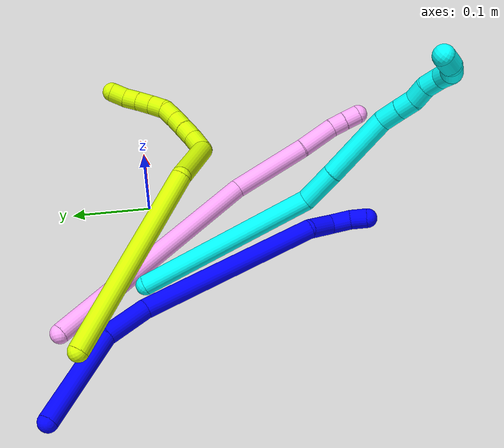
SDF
<sdf version="1.7">
 <world name="default">
  <model name="1">
   <static>0</static>
   <link name="1">
    <collision name="collision-cylinder-e_1_1_4">
     <pose>0.043649 -0.03724 -0.02259 2.11607 0.786469 1.27007</pose>
     <geometry><cylinder><radius>0.0125</radius><length>0.123327</length></cylinder></geometry>
     <surface>
      <friction><ode><mu>1.16</mu><mu2>1.16</mu2><slip1>0</slip1><slip2>0</slip2></ode></friction>
      <contact><ode><kp>1e+06</kp><kd>1</kd><max_vel>0</max_vel><min_depth>0.001</min_depth></ode></contact>
     </surface>
    </collision>
    <visual name="visual-cylinder-e_1_1_4">
     <pose>0.043649 -0.03724 -0.02259 2.11607 0.786469 1.27007</pose>
     <geometry><cylinder><radius>0.0125</radius><length>0.123327</length></cylinder></geometry>
     <material><ambient>0 0 1 1</ambient></material>
    </visual>
    <collision name="collision-cylinder-e_2_4_5">
     <pose>0.102055 -0.099795 -0.052172 1.84024 0.511912 0.662215</pose>
     <geometry><cylinder><radius>0.0125</radius><length>0.060252</length></cylinder></geometry>
     <surface>
      <friction><ode><mu>1.16</mu><mu2>1.16</mu2><slip1>0</slip1><slip2>0</slip2></ode></friction>
      <contact><ode><kp>1e+06</kp><kd>1</kd><max_vel>0</max_vel><min_depth>0.001</min_depth></ode></contact>
     </surface>
    </collision>
    <visual name="visual-cylinder-e_2_4_5">
     <pose>0.102055 -0.099795 -0.052172 1.84024 0.511912 0.662215</pose>
     <geometry><cylinder><radius>0.0125</radius><length>0.060252</length></cylinder></geometry>
     <material><ambient>0 0 1 1</ambient></material>
    </visual>
    <collision name="collision-cylinder-e_3_5_6">
     <pose>0.167911 -0.229491 -0.053424 1.51586 0.454658 0.43111</pose>
     <geometry><cylinder><radius>0.0125</radius><length>0.232714</length></cylinder></geometry>
     <surface>
      <friction><ode><mu>1.16</mu><mu2>1.16</mu2><slip1>0</slip1><slip2>0</slip2></ode></friction>
      <contact><ode><kp>1e+06</kp><kd>1</kd><max_vel>0</max_vel><min_depth>0.001</min_depth></ode></contact>
     </surface>
    </collision>
    <visual name="visual-cylinder-e_3_5_6">
     <pose>0.167911 -0.229491 -0.053424 1.51586 0.454658 0.43111</pose>
     <geometry><cylinder><radius>0.0125</radius><length>0.232714</length></cylinder></geometry>
     <material><ambient>0 0 1 1</ambient></material>
    </visual>
    <collision name="collision-cylinder-e_4_6_7">
     <pose>0.222172 -0.350883 -0.051691 1.80211 0.178945 0.225632</pose>
     <geometry><cylinder><radius>0.0125</radius><length>0.035525</length></cylinder></geometry>
     <surface>
      <friction><ode><mu>1.16</mu><mu2>1.16</mu2><slip1>0</slip1><slip2>0</slip2></ode></friction>
      <contact><ode><kp>1e+06</kp><kd>1</kd><max_vel>0</max_vel><min_depth>0.001</min_depth></ode></contact>
     </surface>
    </collision>
    <visual name="visual-cylinder-e_4_6_7">
     <pose>0.222172 -0.350883 -0.051691 1.80211 0.178945 0.225632</pose>
     <geometry><cylinder><radius>0.0125</radius><length>0.035525</length></cylinder></geometry>
     <material><ambient>0 0 1 1</ambient></material>
    </visual>
    <collision name="collision-cylinder-e_5_7_8">
     <pose>0.229015 -0.379238 -0.049874 1.0964 0.28113 0.172378</pose>
     <geometry><cylinder><radius>0.0125</radius><length>0.026541</length></cylinder></geometry>
     <surface>
      <friction><ode><mu>1.16</mu><mu2>1.16</mu2><slip1>0</slip1><slip2>0</slip2></ode></friction>
      <contact><ode><kp>1e+06</kp><kd>1</kd><max_vel>0</max_vel><min_depth>0.001</min_depth></ode></contact>
     </surface>
    </collision>
    <visual name="visual-cylinder-e_5_7_8">
     <pose>0.229015 -0.379238 -0.049874 1.0964 0.28113 0.172378</pose>
     <geometry><cylinder><radius>0.0125</radius><length>0.026541</length></cylinder></geometry>
     <material><ambient>0 0 1 1</ambient></material>
    </visual>
    <collision name="collision-cylinder-e_6_8_2">
     <pose>0.234254 -0.399417 -0.038004 0.97073 0.144396 0.076257</pose>
     <geometry><cylinder><radius>0.0125</radius><length>0.021642</length></cylinder></geometry>
     <surface>
      <friction><ode><mu>1.16</mu><mu2>1.16</mu2><slip1>0</slip1><slip2>0</slip2></ode></friction>
      <contact><ode><kp>1e+06</kp><kd>1</kd><max_vel>0</max_vel><min_depth>0.001</min_depth></ode></contact>
     </surface>
    </collision>
    <visual name="visual-cylinder-e_6_8_2">
     <pose>0.234254 -0.399417 -0.038004 0.97073 0.144396 0.076257</pose>
     <geometry><cylinder><radius>0.0125</radius><length>0.021642</length></cylinder></geometry>
     <material><ambient>0 0 1 1</ambient></material>
    </visual>
    <collision name="collision-sphere-2">
     <pose>0.235811 -0.408254 -0.031957 0 -0 0</pose>
     <geometry><sphere><radius>0.0125</radius></sphere></geometry>
     <surface>
      <friction><ode><mu>1.16</mu><mu2>1.16</mu2><slip1>0</slip1><slip2>0</slip2></ode></friction>
      <contact><ode><kp>1e+06</kp><kd>1</kd><max_vel>0</max_vel><min_depth>0.001</min_depth></ode></contact>
     </surface>
    </collision>
    <visual name="visual-sphere-2">
     <pose>0.235811 -0.408254 -0.031957 0 -0 0</pose>
     <geometry><sphere><radius>0.0125</radius></sphere></geometry>
     <material><ambient>0 0 1 1</ambient></material>
    </visual>
    <collision name="collision-sphere-4">
     <pose>0.087298 -0.074479 -0.045181 0 -0 0</pose>
     <geometry><sphere><radius>0.0125</radius></sphere></geometry>
     <surface>
      <friction><ode><mu>1.16</mu><mu2>1.16</mu2><slip1>0</slip1><slip2>0</slip2></ode></friction>
      <contact><ode><kp>1e+06</kp><kd>1</kd><max_vel>0</max_vel><min_depth>0.001</min_depth></ode></contact>
     </surface>
    </collision>
    <visual name="visual-sphere-4">
     <pose>0.087298 -0.074479 -0.045181 0 -0 0</pose>
     <geometry><sphere><radius>0.0125</radius></sphere></geometry>
     <material><ambient>0 0 1 1</ambient></material>
    </visual>
    <collision name="collision-sphere-1">
     <geometry><sphere><radius>0.0125</radius></sphere></geometry>
     <surface>
      <friction><ode><mu>1.16</mu><mu2>1.16</mu2><slip1>0</slip1><slip2>0</slip2></ode></friction>
      <contact><ode><kp>1e+06</kp><kd>1</kd><max_vel>0</max_vel><min_depth>0.001</min_depth></ode></contact>
     </surface>
    </collision>
    <visual name="visual-sphere-1">
     <geometry><sphere><radius>0.0125</radius></sphere></geometry>
     <material><ambient>0 0 1 1</ambient></material>
    </visual>
    <collision name="collision-sphere-8">
     <pose>0.232697 -0.390579 -0.044051 0 -0 0</pose>
     <geometry><sphere><radius>0.0125</radius></sphere></geometry>
     <surface>
      <friction><ode><mu>1.16</mu><mu2>1.16</mu2><slip1>0</slip1><slip2>0</slip2></ode></friction>
      <contact><ode><kp>1e+06</kp><kd>1</kd><max_vel>0</max_vel><min_depth>0.001</min_depth></ode></contact>
     </surface>
    </collision>
    <visual name="visual-sphere-8">
     <pose>0.232697 -0.390579 -0.044051 0 -0 0</pose>
     <geometry><sphere><radius>0.0125</radius></sphere></geometry>
     <material><ambient>0 0 1 1</ambient></material>
    </visual>
    <collision name="collision-sphere-5">
     <pose>0.116812 -0.125112 -0.059164 0 -0 0</pose>
     <geometry><sphere><radius>0.0125</radius></sphere></geometry>
     <surface>
      <friction><ode><mu>1.16</mu><mu2>1.16</mu2><slip1>0</slip1><slip2>0</slip2></ode></friction>
      <contact><ode><kp>1e+06</kp><kd>1</kd><max_vel>0</max_vel><min_depth>0.001</min_depth></ode></contact>
     </surface>
    </collision>
    <visual name="visual-sphere-5">
     <pose>0.116812 -0.125112 -0.059164 0 -0 0</pose>
     <geometry><sphere><radius>0.0125</radius></sphere></geometry>
     <material><ambient>0 0 1 1</ambient></material>
    </visual>
    <collision name="collision-sphere-6">
     <pose>0.21901 -0.33387 -0.047684 0 -0 0</pose>
     <geometry><sphere><radius>0.0125</radius></sphere></geometry>
     <surface>
      <friction><ode><mu>1.16</mu><mu2>1.16</mu2><slip1>0</slip1><slip2>0</slip2></ode></friction>
      <contact><ode><kp>1e+06</kp><kd>1</kd><max_vel>0</max_vel><min_depth>0.001</min_depth></ode></contact>
     </surface>
    </collision>
    <visual name="visual-sphere-6">
     <pose>0.21901 -0.33387 -0.047684 0 -0 0</pose>
     <geometry><sphere><radius>0.0125</radius></sphere></geometry>
     <material><ambient>0 0 1 1</ambient></material>
    </visual>
    <collision name="collision-sphere-7">
     <pose>0.225333 -0.367896 -0.055698 0 -0 0</pose>
     <geometry><sphere><radius>0.0125</radius></sphere></geometry>
     <surface>
      <friction><ode><mu>1.16</mu><mu2>1.16</mu2><slip1>0</slip1><slip2>0</slip2></ode></friction>
      <contact><ode><kp>1e+06</kp><kd>1</kd><max_vel>0</max_vel><min_depth>0.001</min_depth></ode></contact>
     </surface>
    </collision>
    <visual name="visual-sphere-7">
     <pose>0.225333 -0.367896 -0.055698 0 -0 0</pose>
     <geometry><sphere><radius>0.0125</radius></sphere></geometry>
     <material><ambient>0 0 1 1</ambient></material>
    </visual>
    <inertial>
     <pose>0.139296 -0.190371 -0.044689 0 -0 0</pose>
     <mass>0.5</mass>
     <inertia>
      <ixx>0.001459</ixx>
      <ixy>0</ixy>
      <ixz>0</ixz>
      <iyy>0.000806</iyy>
      <iyz>0</iyz>
      <izz>0.00048</izz>
     </inertia>
    </inertial>
   </link>
   <pose>-0.307117 0.134175 0.012484 0.434431 -0.736942 -0.192555</pose>
  </model>
  <model name="3">
   <static>0</static>
   <link name="3">
    <collision name="collision-cylinder-e_1_1_4">
     <pose>0.014718 -0.060624 0.092018 0.582556 0.132777 0.039861</pose>
     <geometry><cylinder><radius>0.0125</radius><length>0.222343</length></cylinder></geometry>
     <surface>
      <friction><ode><mu>1.16</mu><mu2>1.16</mu2><slip1>0</slip1><slip2>0</slip2></ode></friction>
      <contact><ode><kp>1e+06</kp><kd>1</kd><max_vel>0</max_vel><min_depth>0.001</min_depth></ode></contact>
     </surface>
    </collision>
    <visual name="visual-cylinder-e_1_1_4">
     <pose>0.014718 -0.060624 0.092018 0.582556 0.132777 0.039861</pose>
     <geometry><cylinder><radius>0.0125</radius><length>0.222343</length></cylinder></geometry>
     <material><ambient>0.003922 1 0.996078 1</ambient></material>
    </visual>
    <collision name="collision-cylinder-e_2_4_5">
     <pose>0.032044 -0.125366 0.206474 0.181527 0.113849 0.010373</pose>
     <geometry><cylinder><radius>0.0125</radius><length>0.045924</length></cylinder></geometry>
     <surface>
      <friction><ode><mu>1.16</mu><mu2>1.16</mu2><slip1>0</slip1><slip2>0</slip2></ode></friction>
      <contact><ode><kp>1e+06</kp><kd>1</kd><max_vel>0</max_vel><min_depth>0.001</min_depth></ode></contact>
     </surface>
    </collision>
    <visual name="visual-cylinder-e_2_4_5">
     <pose>0.032044 -0.125366 0.206474 0.181527 0.113849 0.010373</pose>
     <geometry><cylinder><radius>0.0125</radius><length>0.045924</length></cylinder></geometry>
     <material><ambient>0.003922 1 0.996078 1</ambient></material>
    </visual>
    <collision name="collision-cylinder-e_3_5_6">
     <pose>0.041416 -0.137377 0.270074 0.189453 0.159989 0.015233</pose>
     <geometry><cylinder><radius>0.0125</radius><length>0.084908</length></cylinder></geometry>
     <surface>
      <friction><ode><mu>1.16</mu><mu2>1.16</mu2><slip1>0</slip1><slip2>0</slip2></ode></friction>
      <contact><ode><kp>1e+06</kp><kd>1</kd><max_vel>0</max_vel><min_depth>0.001</min_depth></ode></contact>
     </surface>
    </collision>
    <visual name="visual-cylinder-e_3_5_6">
     <pose>0.041416 -0.137377 0.270074 0.189453 0.159989 0.015233</pose>
     <geometry><cylinder><radius>0.0125</radius><length>0.084908</length></cylinder></geometry>
     <material><ambient>0.003922 1 0.996078 1</ambient></material>
    </visual>
    <collision name="collision-cylinder-e_4_6_7">
     <pose>0.046261 -0.148255 0.323265 0.243235 -0.1535 -0.018797</pose>
     <geometry><cylinder><radius>0.0125</radius><length>0.025082</length></cylinder></geometry>
     <surface>
      <friction><ode><mu>1.16</mu><mu2>1.16</mu2><slip1>0</slip1><slip2>0</slip2></ode></friction>
      <contact><ode><kp>1e+06</kp><kd>1</kd><max_vel>0</max_vel><min_depth>0.001</min_depth></ode></contact>
     </surface>
    </collision>
    <visual name="visual-cylinder-e_4_6_7">
     <pose>0.046261 -0.148255 0.323265 0.243235 -0.1535 -0.018797</pose>
     <geometry><cylinder><radius>0.0125</radius><length>0.025082</length></cylinder></geometry>
     <material><ambient>0.003922 1 0.996078 1</ambient></material>
    </visual>
    <collision name="collision-cylinder-e_5_7_8">
     <pose>0.042843 -0.153864 0.344989 0.264262 -0.148367 -0.019754</pose>
     <geometry><cylinder><radius>0.0125</radius><length>0.02031</length></cylinder></geometry>
     <surface>
      <friction><ode><mu>1.16</mu><mu2>1.16</mu2><slip1>0</slip1><slip2>0</slip2></ode></friction>
      <contact><ode><kp>1e+06</kp><kd>1</kd><max_vel>0</max_vel><min_depth>0.001</min_depth></ode></contact>
     </surface>
    </collision>
    <visual name="visual-cylinder-e_5_7_8">
     <pose>0.042843 -0.153864 0.344989 0.264262 -0.148367 -0.019754</pose>
     <geometry><cylinder><radius>0.0125</radius><length>0.02031</length></cylinder></geometry>
     <material><ambient>0.003922 1 0.996078 1</ambient></material>
    </visual>
    <collision name="collision-cylinder-e_6_8_9">
     <pose>0.040499 -0.156159 0.365258 -0.030997 -0.079497 0.001233</pose>
     <geometry><cylinder><radius>0.0125</radius><length>0.021225</length></cylinder></geometry>
     <surface>
      <friction><ode><mu>1.16</mu><mu2>1.16</mu2><slip1>0</slip1><slip2>0</slip2></ode></friction>
      <contact><ode><kp>1e+06</kp><kd>1</kd><max_vel>0</max_vel><min_depth>0.001</min_depth></ode></contact>
     </surface>
    </collision>
    <visual name="visual-cylinder-e_6_8_9">
     <pose>0.040499 -0.156159 0.365258 -0.030997 -0.079497 0.001233</pose>
     <geometry><cylinder><radius>0.0125</radius><length>0.021225</length></cylinder></geometry>
     <material><ambient>0.003922 1 0.996078 1</ambient></material>
    </visual>
    <collision name="collision-cylinder-e_7_9_10">
     <pose>0.037077 -0.157752 0.385343 0.199289 -0.259781 -0.026117</pose>
     <geometry><cylinder><radius>0.0125</radius><length>0.02008</length></cylinder></geometry>
     <surface>
      <friction><ode><mu>1.16</mu><mu2>1.16</mu2><slip1>0</slip1><slip2>0</slip2></ode></friction>
      <contact><ode><kp>1e+06</kp><kd>1</kd><max_vel>0</max_vel><min_depth>0.001</min_depth></ode></contact>
     </surface>
    </collision>
    <visual name="visual-cylinder-e_7_9_10">
     <pose>0.037077 -0.157752 0.385343 0.199289 -0.259781 -0.026117</pose>
     <geometry><cylinder><radius>0.0125</radius><length>0.02008</length></cylinder></geometry>
     <material><ambient>0.003922 1 0.996078 1</ambient></material>
    </visual>
    <collision name="collision-cylinder-e_8_10_11">
     <pose>0.028382 -0.159153 0.402818 -0.06525 -0.653887 0.022134</pose>
     <geometry><cylinder><radius>0.0125</radius><length>0.02011</length></cylinder></geometry>
     <surface>
      <friction><ode><mu>1.16</mu><mu2>1.16</mu2><slip1>0</slip1><slip2>0</slip2></ode></friction>
      <contact><ode><kp>1e+06</kp><kd>1</kd><max_vel>0</max_vel><min_depth>0.001</min_depth></ode></contact>
     </surface>
    </collision>
    <visual name="visual-cylinder-e_8_10_11">
     <pose>0.028382 -0.159153 0.402818 -0.06525 -0.653887 0.022134</pose>
     <geometry><cylinder><radius>0.0125</radius><length>0.02011</length></cylinder></geometry>
     <material><ambient>0.003922 1 0.996078 1</ambient></material>
    </visual>
    <collision name="collision-cylinder-e_9_11_12">
     <pose>0.017167 -0.152018 0.416292 -0.876229 -0.534691 0.25524</pose>
     <geometry><cylinder><radius>0.0125</radius><length>0.020011</length></cylinder></geometry>
     <surface>
      <friction><ode><mu>1.16</mu><mu2>1.16</mu2><slip1>0</slip1><slip2>0</slip2></ode></friction>
      <contact><ode><kp>1e+06</kp><kd>1</kd><max_vel>0</max_vel><min_depth>0.001</min_depth></ode></contact>
     </surface>
    </collision>
    <visual name="visual-cylinder-e_9_11_12">
     <pose>0.017167 -0.152018 0.416292 -0.876229 -0.534691 0.25524</pose>
     <geometry><cylinder><radius>0.0125</radius><length>0.020011</length></cylinder></geometry>
     <material><ambient>0.003922 1 0.996078 1</ambient></material>
    </visual>
    <collision name="collision-cylinder-e_10_12_2">
     <pose>0.009944 -0.136413 0.42564 -1.16736 -0.214004 0.141642</pose>
     <geometry><cylinder><radius>0.0125</radius><length>0.020006</length></cylinder></geometry>
     <surface>
      <friction><ode><mu>1.16</mu><mu2>1.16</mu2><slip1>0</slip1><slip2>0</slip2></ode></friction>
      <contact><ode><kp>1e+06</kp><kd>1</kd><max_vel>0</max_vel><min_depth>0.001</min_depth></ode></contact>
     </surface>
    </collision>
    <visual name="visual-cylinder-e_10_12_2">
     <pose>0.009944 -0.136413 0.42564 -1.16736 -0.214004 0.141642</pose>
     <geometry><cylinder><radius>0.0125</radius><length>0.020006</length></cylinder></geometry>
     <material><ambient>0.003922 1 0.996078 1</ambient></material>
    </visual>
    <collision name="collision-sphere-2">
     <pose>0.00782 -0.127423 0.429477 0 -0 0</pose>
     <geometry><sphere><radius>0.0125</radius></sphere></geometry>
     <surface>
      <friction><ode><mu>1.16</mu><mu2>1.16</mu2><slip1>0</slip1><slip2>0</slip2></ode></friction>
      <contact><ode><kp>1e+06</kp><kd>1</kd><max_vel>0</max_vel><min_depth>0.001</min_depth></ode></contact>
     </surface>
    </collision>
    <visual name="visual-sphere-2">
     <pose>0.00782 -0.127423 0.429477 0 -0 0</pose>
     <geometry><sphere><radius>0.0125</radius></sphere></geometry>
     <material><ambient>0.003922 1 0.996078 1</ambient></material>
    </visual>
    <collision name="collision-sphere-12">
     <pose>0.012068 -0.145403 0.421802 0 -0 0</pose>
     <geometry><sphere><radius>0.0125</radius></sphere></geometry>
     <surface>
      <friction><ode><mu>1.16</mu><mu2>1.16</mu2><slip1>0</slip1><slip2>0</slip2></ode></friction>
      <contact><ode><kp>1e+06</kp><kd>1</kd><max_vel>0</max_vel><min_depth>0.001</min_depth></ode></contact>
     </surface>
    </collision>
    <visual name="visual-sphere-12">
     <pose>0.012068 -0.145403 0.421802 0 -0 0</pose>
     <geometry><sphere><radius>0.0125</radius></sphere></geometry>
     <material><ambient>0.003922 1 0.996078 1</ambient></material>
    </visual>
    <collision name="collision-sphere-11">
     <pose>0.022266 -0.158632 0.410782 0 -0 0</pose>
     <geometry><sphere><radius>0.0125</radius></sphere></geometry>
     <surface>
      <friction><ode><mu>1.16</mu><mu2>1.16</mu2><slip1>0</slip1><slip2>0</slip2></ode></friction>
      <contact><ode><kp>1e+06</kp><kd>1</kd><max_vel>0</max_vel><min_depth>0.001</min_depth></ode></contact>
     </surface>
    </collision>
    <visual name="visual-sphere-11">
     <pose>0.022266 -0.158632 0.410782 0 -0 0</pose>
     <geometry><sphere><radius>0.0125</radius></sphere></geometry>
     <material><ambient>0.003922 1 0.996078 1</ambient></material>
    </visual>
    <collision name="collision-sphere-10">
     <pose>0.034498 -0.159673 0.394854 0 -0 0</pose>
     <geometry><sphere><radius>0.0125</radius></sphere></geometry>
     <surface>
      <friction><ode><mu>1.16</mu><mu2>1.16</mu2><slip1>0</slip1><slip2>0</slip2></ode></friction>
      <contact><ode><kp>1e+06</kp><kd>1</kd><max_vel>0</max_vel><min_depth>0.001</min_depth></ode></contact>
     </surface>
    </collision>
    <visual name="visual-sphere-10">
     <pose>0.034498 -0.159673 0.394854 0 -0 0</pose>
     <geometry><sphere><radius>0.0125</radius></sphere></geometry>
     <material><ambient>0.003922 1 0.996078 1</ambient></material>
    </visual>
    <collision name="collision-sphere-9">
     <pose>0.039656 -0.155831 0.375832 0 -0 0</pose>
     <geometry><sphere><radius>0.0125</radius></sphere></geometry>
     <surface>
      <friction><ode><mu>1.16</mu><mu2>1.16</mu2><slip1>0</slip1><slip2>0</slip2></ode></friction>
      <contact><ode><kp>1e+06</kp><kd>1</kd><max_vel>0</max_vel><min_depth>0.001</min_depth></ode></contact>
     </surface>
    </collision>
    <visual name="visual-sphere-9">
     <pose>0.039656 -0.155831 0.375832 0 -0 0</pose>
     <geometry><sphere><radius>0.0125</radius></sphere></geometry>
     <material><ambient>0.003922 1 0.996078 1</ambient></material>
    </visual>
    <collision name="collision-sphere-4">
     <pose>0.029435 -0.121248 0.184035 0 -0 0</pose>
     <geometry><sphere><radius>0.0125</radius></sphere></geometry>
     <surface>
      <friction><ode><mu>1.16</mu><mu2>1.16</mu2><slip1>0</slip1><slip2>0</slip2></ode></friction>
      <contact><ode><kp>1e+06</kp><kd>1</kd><max_vel>0</max_vel><min_depth>0.001</min_depth></ode></contact>
     </surface>
    </collision>
    <visual name="visual-sphere-4">
     <pose>0.029435 -0.121248 0.184035 0 -0 0</pose>
     <geometry><sphere><radius>0.0125</radius></sphere></geometry>
     <material><ambient>0.003922 1 0.996078 1</ambient></material>
    </visual>
    <collision name="collision-sphere-1">
     <geometry><sphere><radius>0.0125</radius></sphere></geometry>
     <surface>
      <friction><ode><mu>1.16</mu><mu2>1.16</mu2><slip1>0</slip1><slip2>0</slip2></ode></friction>
      <contact><ode><kp>1e+06</kp><kd>1</kd><max_vel>0</max_vel><min_depth>0.001</min_depth></ode></contact>
     </surface>
    </collision>
    <visual name="visual-sphere-1">
     <geometry><sphere><radius>0.0125</radius></sphere></geometry>
     <material><ambient>0.003922 1 0.996078 1</ambient></material>
    </visual>
    <collision name="collision-sphere-8">
     <pose>0.041342 -0.156487 0.354684 0 -0 0</pose>
     <geometry><sphere><radius>0.0125</radius></sphere></geometry>
     <surface>
      <friction><ode><mu>1.16</mu><mu2>1.16</mu2><slip1>0</slip1><slip2>0</slip2></ode></friction>
      <contact><ode><kp>1e+06</kp><kd>1</kd><max_vel>0</max_vel><min_depth>0.001</min_depth></ode></contact>
     </surface>
    </collision>
    <visual name="visual-sphere-8">
     <pose>0.041342 -0.156487 0.354684 0 -0 0</pose>
     <geometry><sphere><radius>0.0125</radius></sphere></geometry>
     <material><ambient>0.003922 1 0.996078 1</ambient></material>
    </visual>
    <collision name="collision-sphere-5">
     <pose>0.034652 -0.129485 0.228912 0 -0 0</pose>
     <geometry><sphere><radius>0.0125</radius></sphere></geometry>
     <surface>
      <friction><ode><mu>1.16</mu><mu2>1.16</mu2><slip1>0</slip1><slip2>0</slip2></ode></friction>
      <contact><ode><kp>1e+06</kp><kd>1</kd><max_vel>0</max_vel><min_depth>0.001</min_depth></ode></contact>
     </surface>
    </collision>
    <visual name="visual-sphere-5">
     <pose>0.034652 -0.129485 0.228912 0 -0 0</pose>
     <geometry><sphere><radius>0.0125</radius></sphere></geometry>
     <material><ambient>0.003922 1 0.996078 1</ambient></material>
    </visual>
    <collision name="collision-sphere-6">
     <pose>0.048179 -0.14527 0.311236 0 -0 0</pose>
     <geometry><sphere><radius>0.0125</radius></sphere></geometry>
     <surface>
      <friction><ode><mu>1.16</mu><mu2>1.16</mu2><slip1>0</slip1><slip2>0</slip2></ode></friction>
      <contact><ode><kp>1e+06</kp><kd>1</kd><max_vel>0</max_vel><min_depth>0.001</min_depth></ode></contact>
     </surface>
    </collision>
    <visual name="visual-sphere-6">
     <pose>0.048179 -0.14527 0.311236 0 -0 0</pose>
     <geometry><sphere><radius>0.0125</radius></sphere></geometry>
     <material><ambient>0.003922 1 0.996078 1</ambient></material>
    </visual>
    <collision name="collision-sphere-7">
     <pose>0.044344 -0.15124 0.335294 0 -0 0</pose>
     <geometry><sphere><radius>0.0125</radius></sphere></geometry>
     <surface>
      <friction><ode><mu>1.16</mu><mu2>1.16</mu2><slip1>0</slip1><slip2>0</slip2></ode></friction>
      <contact><ode><kp>1e+06</kp><kd>1</kd><max_vel>0</max_vel><min_depth>0.001</min_depth></ode></contact>
     </surface>
    </collision>
    <visual name="visual-sphere-7">
     <pose>0.044344 -0.15124 0.335294 0 -0 0</pose>
     <geometry><sphere><radius>0.0125</radius></sphere></geometry>
     <material><ambient>0.003922 1 0.996078 1</ambient></material>
    </visual>
    <inertial>
     <pose>0.026017 -0.106397 0.21685 0 -0 0</pose>
     <mass>0.5</mass>
     <inertia>
      <ixx>0.001028</ixx>
      <ixy>0</ixy>
      <ixz>0</ixz>
      <iyy>0.000875</iyy>
      <iyz>0</iyz>
      <izz>0.000419</izz>
     </inertia>
    </inertial>
   </link>
   <pose>-0.132877 0.013563 0.011481 0.553759 0.131329 -0.028507</pose>
  </model>
  <model name="4">
   <static>0</static>
   <link name="4">
    <collision name="collision-cylinder-e_1_1_4">
     <pose>0.084355 -0.097272 0.08599 0.846884 0.576186 0.265551</pose>
     <geometry><cylinder><radius>0.0125</radius><length>0.309657</length></cylinder></geometry>
     <surface>
      <friction><ode><mu>1.16</mu><mu2>1.16</mu2><slip1>0</slip1><slip2>0</slip2></ode></friction>
      <contact><ode><kp>1e+06</kp><kd>1</kd><max_vel>0</max_vel><min_depth>0.001</min_depth></ode></contact>
     </surface>
    </collision>
    <visual name="visual-cylinder-e_1_1_4">
     <pose>0.084355 -0.097272 0.08599 0.846884 0.576186 0.265551</pose>
     <geometry><cylinder><radius>0.0125</radius><length>0.309657</length></cylinder></geometry>
     <material><ambient>1 0.65098 0.996078 1</ambient></material>
    </visual>
    <collision name="collision-cylinder-e_2_4_5">
     <pose>0.179948 -0.241264 0.189677 1.2087 0.221252 0.153111</pose>
     <geometry><cylinder><radius>0.0125</radius><length>0.102415</length></cylinder></geometry>
     <surface>
      <friction><ode><mu>1.16</mu><mu2>1.16</mu2><slip1>0</slip1><slip2>0</slip2></ode></friction>
      <contact><ode><kp>1e+06</kp><kd>1</kd><max_vel>0</max_vel><min_depth>0.001</min_depth></ode></contact>
     </surface>
    </collision>
    <visual name="visual-cylinder-e_2_4_5">
     <pose>0.179948 -0.241264 0.189677 1.2087 0.221252 0.153111</pose>
     <geometry><cylinder><radius>0.0125</radius><length>0.102415</length></cylinder></geometry>
     <material><ambient>1 0.65098 0.996078 1</ambient></material>
    </visual>
    <collision name="collision-cylinder-e_3_5_6">
     <pose>0.19826 -0.308393 0.217631 1.10509 0.300354 0.186068</pose>
     <geometry><cylinder><radius>0.0125</radius><length>0.047824</length></cylinder></geometry>
     <surface>
      <friction><ode><mu>1.16</mu><mu2>1.16</mu2><slip1>0</slip1><slip2>0</slip2></ode></friction>
      <contact><ode><kp>1e+06</kp><kd>1</kd><max_vel>0</max_vel><min_depth>0.001</min_depth></ode></contact>
     </surface>
    </collision>
    <visual name="visual-cylinder-e_3_5_6">
     <pose>0.19826 -0.308393 0.217631 1.10509 0.300354 0.186068</pose>
     <geometry><cylinder><radius>0.0125</radius><length>0.047824</length></cylinder></geometry>
     <material><ambient>1 0.65098 0.996078 1</ambient></material>
    </visual>
    <collision name="collision-cylinder-e_4_6_7">
     <pose>0.207996 -0.338042 0.230766 1.26883 0.268368 0.198037</pose>
     <geometry><cylinder><radius>0.0125</radius><length>0.020074</length></cylinder></geometry>
     <surface>
      <friction><ode><mu>1.16</mu><mu2>1.16</mu2><slip1>0</slip1><slip2>0</slip2></ode></friction>
      <contact><ode><kp>1e+06</kp><kd>1</kd><max_vel>0</max_vel><min_depth>0.001</min_depth></ode></contact>
     </surface>
    </collision>
    <visual name="visual-cylinder-e_4_6_7">
     <pose>0.207996 -0.338042 0.230766 1.26883 0.268368 0.198037</pose>
     <geometry><cylinder><radius>0.0125</radius><length>0.020074</length></cylinder></geometry>
     <material><ambient>1 0.65098 0.996078 1</ambient></material>
    </visual>
    <collision name="collision-cylinder-e_5_7_2">
     <pose>0.213602 -0.356434 0.236448 1.27348 0.298399 0.221406</pose>
     <geometry><cylinder><radius>0.0125</radius><length>0.02003</length></cylinder></geometry>
     <surface>
      <friction><ode><mu>1.16</mu><mu2>1.16</mu2><slip1>0</slip1><slip2>0</slip2></ode></friction>
      <contact><ode><kp>1e+06</kp><kd>1</kd><max_vel>0</max_vel><min_depth>0.001</min_depth></ode></contact>
     </surface>
    </collision>
    <visual name="visual-cylinder-e_5_7_2">
     <pose>0.213602 -0.356434 0.236448 1.27348 0.298399 0.221406</pose>
     <geometry><cylinder><radius>0.0125</radius><length>0.02003</length></cylinder></geometry>
     <material><ambient>1 0.65098 0.996078 1</ambient></material>
    </visual>
    <collision name="collision-sphere-2">
     <pose>0.216546 -0.365586 0.239253 0 -0 0</pose>
     <geometry><sphere><radius>0.0125</radius></sphere></geometry>
     <surface>
      <friction><ode><mu>1.16</mu><mu2>1.16</mu2><slip1>0</slip1><slip2>0</slip2></ode></friction>
      <contact><ode><kp>1e+06</kp><kd>1</kd><max_vel>0</max_vel><min_depth>0.001</min_depth></ode></contact>
     </surface>
    </collision>
    <visual name="visual-sphere-2">
     <pose>0.216546 -0.365586 0.239253 0 -0 0</pose>
     <geometry><sphere><radius>0.0125</radius></sphere></geometry>
     <material><ambient>1 0.65098 0.996078 1</ambient></material>
    </visual>
    <collision name="collision-sphere-7">
     <pose>0.210658 -0.347282 0.233644 0 -0 0</pose>
     <geometry><sphere><radius>0.0125</radius></sphere></geometry>
     <surface>
      <friction><ode><mu>1.16</mu><mu2>1.16</mu2><slip1>0</slip1><slip2>0</slip2></ode></friction>
      <contact><ode><kp>1e+06</kp><kd>1</kd><max_vel>0</max_vel><min_depth>0.001</min_depth></ode></contact>
     </surface>
    </collision>
    <visual name="visual-sphere-7">
     <pose>0.210658 -0.347282 0.233644 0 -0 0</pose>
     <geometry><sphere><radius>0.0125</radius></sphere></geometry>
     <material><ambient>1 0.65098 0.996078 1</ambient></material>
    </visual>
    <collision name="collision-sphere-6">
     <pose>0.205335 -0.328802 0.227888 0 -0 0</pose>
     <geometry><sphere><radius>0.0125</radius></sphere></geometry>
     <surface>
      <friction><ode><mu>1.16</mu><mu2>1.16</mu2><slip1>0</slip1><slip2>0</slip2></ode></friction>
      <contact><ode><kp>1e+06</kp><kd>1</kd><max_vel>0</max_vel><min_depth>0.001</min_depth></ode></contact>
     </surface>
    </collision>
    <visual name="visual-sphere-6">
     <pose>0.205335 -0.328802 0.227888 0 -0 0</pose>
     <geometry><sphere><radius>0.0125</radius></sphere></geometry>
     <material><ambient>1 0.65098 0.996078 1</ambient></material>
    </visual>
    <collision name="collision-sphere-5">
     <pose>0.191186 -0.287984 0.207374 0 -0 0</pose>
     <geometry><sphere><radius>0.0125</radius></sphere></geometry>
     <surface>
      <friction><ode><mu>1.16</mu><mu2>1.16</mu2><slip1>0</slip1><slip2>0</slip2></ode></friction>
      <contact><ode><kp>1e+06</kp><kd>1</kd><max_vel>0</max_vel><min_depth>0.001</min_depth></ode></contact>
     </surface>
    </collision>
    <visual name="visual-sphere-5">
     <pose>0.191186 -0.287984 0.207374 0 -0 0</pose>
     <geometry><sphere><radius>0.0125</radius></sphere></geometry>
     <material><ambient>1 0.65098 0.996078 1</ambient></material>
    </visual>
    <collision name="collision-sphere-1">
     <geometry><sphere><radius>0.0125</radius></sphere></geometry>
     <surface>
      <friction><ode><mu>1.16</mu><mu2>1.16</mu2><slip1>0</slip1><slip2>0</slip2></ode></friction>
      <contact><ode><kp>1e+06</kp><kd>1</kd><max_vel>0</max_vel><min_depth>0.001</min_depth></ode></contact>
     </surface>
    </collision>
    <visual name="visual-sphere-1">
     <geometry><sphere><radius>0.0125</radius></sphere></geometry>
     <material><ambient>1 0.65098 0.996078 1</ambient></material>
    </visual>
    <collision name="collision-sphere-4">
     <pose>0.16871 -0.194544 0.17198 0 -0 0</pose>
     <geometry><sphere><radius>0.0125</radius></sphere></geometry>
     <surface>
      <friction><ode><mu>1.16</mu><mu2>1.16</mu2><slip1>0</slip1><slip2>0</slip2></ode></friction>
      <contact><ode><kp>1e+06</kp><kd>1</kd><max_vel>0</max_vel><min_depth>0.001</min_depth></ode></contact>
     </surface>
    </collision>
    <visual name="visual-sphere-4">
     <pose>0.16871 -0.194544 0.17198 0 -0 0</pose>
     <geometry><sphere><radius>0.0125</radius></sphere></geometry>
     <material><ambient>1 0.65098 0.996078 1</ambient></material>
    </visual>
    <inertial>
     <pose>0.124972 -0.167007 0.131659 0 -0 0</pose>
     <mass>0.5</mass>
     <inertia>
      <ixx>0.002696</ixx>
      <ixy>0</ixy>
      <ixz>0</ixz>
      <iyy>0.002433</iyy>
      <iyz>0</iyz>
      <izz>0.000299</izz>
     </inertia>
    </inertial>
   </link>
   <pose>-0.190474 0.118904 0.011491 -0.8667 0.994497 -0.885771</pose>
  </model>
  <model name="15">
   <static>0</static>
   <link name="15">
    <collision name="collision-cylinder-e_1_1_4">
     <pose>0.102198 -0.021126 0.058094 0.348792 1.02681 0.19803</pose>
     <geometry><cylinder><radius>0.0125</radius><length>0.238879</length></cylinder></geometry>
     <surface>
      <friction><ode><mu>1.16</mu><mu2>1.16</mu2><slip1>0</slip1><slip2>0</slip2></ode></friction>
      <contact><ode><kp>1e+06</kp><kd>1</kd><max_vel>0</max_vel><min_depth>0.001</min_depth></ode></contact>
     </surface>
    </collision>
    <visual name="visual-cylinder-e_1_1_4">
     <pose>0.102198 -0.021126 0.058094 0.348792 1.02681 0.19803</pose>
     <geometry><cylinder><radius>0.0125</radius><length>0.238879</length></cylinder></geometry>
     <material><ambient>0.835294 1 0 1</ambient></material>
    </visual>
    <collision name="collision-cylinder-e_2_4_5">
     <pose>0.239753 -0.069107 0.113886 1.65629 0.91945 0.989261</pose>
     <geometry><cylinder><radius>0.0125</radius><length>0.088915</length></cylinder></geometry>
     <surface>
      <friction><ode><mu>1.16</mu><mu2>1.16</mu2><slip1>0</slip1><slip2>0</slip2></ode></friction>
      <contact><ode><kp>1e+06</kp><kd>1</kd><max_vel>0</max_vel><min_depth>0.001</min_depth></ode></contact>
     </surface>
    </collision>
    <visual name="visual-cylinder-e_2_4_5">
     <pose>0.239753 -0.069107 0.113886 1.65629 0.91945 0.989261</pose>
     <geometry><cylinder><radius>0.0125</radius><length>0.088915</length></cylinder></geometry>
     <material><ambient>0.835294 1 0 1</ambient></material>
    </visual>
    <collision name="collision-cylinder-e_3_5_6">
     <pose>0.287538 -0.09633 0.10476 3.0877 1.06801 3.0505</pose>
     <geometry><cylinder><radius>0.0125</radius><length>0.028369</length></cylinder></geometry>
     <surface>
      <friction><ode><mu>1.16</mu><mu2>1.16</mu2><slip1>0</slip1><slip2>0</slip2></ode></friction>
      <contact><ode><kp>1e+06</kp><kd>1</kd><max_vel>0</max_vel><min_depth>0.001</min_depth></ode></contact>
     </surface>
    </collision>
    <visual name="visual-cylinder-e_3_5_6">
     <pose>0.287538 -0.09633 0.10476 3.0877 1.06801 3.0505</pose>
     <geometry><cylinder><radius>0.0125</radius><length>0.028369</length></cylinder></geometry>
     <material><ambient>0.835294 1 0 1</ambient></material>
    </visual>
    <collision name="collision-cylinder-e_4_6_7">
     <pose>0.308842 -0.094073 0.092867 -2.66369 0.999396 -2.30215</pose>
     <geometry><cylinder><radius>0.0125</radius><length>0.021105</length></cylinder></geometry>
     <surface>
      <friction><ode><mu>1.16</mu><mu2>1.16</mu2><slip1>0</slip1><slip2>0</slip2></ode></friction>
      <contact><ode><kp>1e+06</kp><kd>1</kd><max_vel>0</max_vel><min_depth>0.001</min_depth></ode></contact>
     </surface>
    </collision>
    <visual name="visual-cylinder-e_4_6_7">
     <pose>0.308842 -0.094073 0.092867 -2.66369 0.999396 -2.30215</pose>
     <geometry><cylinder><radius>0.0125</radius><length>0.021105</length></cylinder></geometry>
     <material><ambient>0.835294 1 0 1</ambient></material>
    </visual>
    <collision name="collision-cylinder-e_5_7_8">
     <pose>0.326787 -0.089407 0.082414 -2.77928 1.00491 -2.49809</pose>
     <geometry><cylinder><radius>0.0125</radius><length>0.021486</length></cylinder></geometry>
     <surface>
      <friction><ode><mu>1.16</mu><mu2>1.16</mu2><slip1>0</slip1><slip2>0</slip2></ode></friction>
      <contact><ode><kp>1e+06</kp><kd>1</kd><max_vel>0</max_vel><min_depth>0.001</min_depth></ode></contact>
     </surface>
    </collision>
    <visual name="visual-cylinder-e_5_7_8">
     <pose>0.326787 -0.089407 0.082414 -2.77928 1.00491 -2.49809</pose>
     <geometry><cylinder><radius>0.0125</radius><length>0.021486</length></cylinder></geometry>
     <material><ambient>0.835294 1 0 1</ambient></material>
    </visual>
    <collision name="collision-cylinder-e_6_8_9">
     <pose>0.344014 -0.083591 0.071853 -2.51139 0.905186 -1.9605</pose>
     <geometry><cylinder><radius>0.0125</radius><length>0.020746</length></cylinder></geometry>
     <surface>
      <friction><ode><mu>1.16</mu><mu2>1.16</mu2><slip1>0</slip1><slip2>0</slip2></ode></friction>
      <contact><ode><kp>1e+06</kp><kd>1</kd><max_vel>0</max_vel><min_depth>0.001</min_depth></ode></contact>
     </surface>
    </collision>
    <visual name="visual-cylinder-e_6_8_9">
     <pose>0.344014 -0.083591 0.071853 -2.51139 0.905186 -1.9605</pose>
     <geometry><cylinder><radius>0.0125</radius><length>0.020746</length></cylinder></geometry>
     <material><ambient>0.835294 1 0 1</ambient></material>
    </visual>
    <collision name="collision-cylinder-e_7_9_10">
     <pose>0.357659 -0.076778 0.058645 -2.78005 0.568531 -2.02362</pose>
     <geometry><cylinder><radius>0.0125</radius><length>0.020382</length></cylinder></geometry>
     <surface>
      <friction><ode><mu>1.16</mu><mu2>1.16</mu2><slip1>0</slip1><slip2>0</slip2></ode></friction>
      <contact><ode><kp>1e+06</kp><kd>1</kd><max_vel>0</max_vel><min_depth>0.001</min_depth></ode></contact>
     </surface>
    </collision>
    <visual name="visual-cylinder-e_7_9_10">
     <pose>0.357659 -0.076778 0.058645 -2.78005 0.568531 -2.02362</pose>
     <geometry><cylinder><radius>0.0125</radius><length>0.020382</length></cylinder></geometry>
     <material><ambient>0.835294 1 0 1</ambient></material>
    </visual>
    <collision name="collision-cylinder-e_8_10_11">
     <pose>0.367963 -0.069957 0.042671 -2.69703 0.501056 -1.69467</pose>
     <geometry><cylinder><radius>0.0125</radius><length>0.020058</length></cylinder></geometry>
     <surface>
      <friction><ode><mu>1.16</mu><mu2>1.16</mu2><slip1>0</slip1><slip2>0</slip2></ode></friction>
      <contact><ode><kp>1e+06</kp><kd>1</kd><max_vel>0</max_vel><min_depth>0.001</min_depth></ode></contact>
     </surface>
    </collision>
    <visual name="visual-cylinder-e_8_10_11">
     <pose>0.367963 -0.069957 0.042671 -2.69703 0.501056 -1.69467</pose>
     <geometry><cylinder><radius>0.0125</radius><length>0.020058</length></cylinder></geometry>
     <material><ambient>0.835294 1 0 1</ambient></material>
    </visual>
    <collision name="collision-cylinder-e_9_11_12">
     <pose>0.377227 -0.062228 0.026662 -2.68674 0.459726 -1.58182</pose>
     <geometry><cylinder><radius>0.0125</radius><length>0.020045</length></cylinder></geometry>
     <surface>
      <friction><ode><mu>1.16</mu><mu2>1.16</mu2><slip1>0</slip1><slip2>0</slip2></ode></friction>
      <contact><ode><kp>1e+06</kp><kd>1</kd><max_vel>0</max_vel><min_depth>0.001</min_depth></ode></contact>
     </surface>
    </collision>
    <visual name="visual-cylinder-e_9_11_12">
     <pose>0.377227 -0.062228 0.026662 -2.68674 0.459726 -1.58182</pose>
     <geometry><cylinder><radius>0.0125</radius><length>0.020045</length></cylinder></geometry>
     <material><ambient>0.835294 1 0 1</ambient></material>
    </visual>
    <collision name="collision-cylinder-e_10_12_2">
     <pose>0.385938 -0.052016 0.012058 -2.37717 0.440096 -1.01552</pose>
     <geometry><cylinder><radius>0.0125</radius><length>0.020017</length></cylinder></geometry>
     <surface>
      <friction><ode><mu>1.16</mu><mu2>1.16</mu2><slip1>0</slip1><slip2>0</slip2></ode></friction>
      <contact><ode><kp>1e+06</kp><kd>1</kd><max_vel>0</max_vel><min_depth>0.001</min_depth></ode></contact>
     </surface>
    </collision>
    <visual name="visual-cylinder-e_10_12_2">
     <pose>0.385938 -0.052016 0.012058 -2.37717 0.440096 -1.01552</pose>
     <geometry><cylinder><radius>0.0125</radius><length>0.020017</length></cylinder></geometry>
     <material><ambient>0.835294 1 0 1</ambient></material>
    </visual>
    <collision name="collision-sphere-2">
     <pose>0.390202 -0.045749 0.005522 0 -0 0</pose>
     <geometry><sphere><radius>0.0125</radius></sphere></geometry>
     <surface>
      <friction><ode><mu>1.16</mu><mu2>1.16</mu2><slip1>0</slip1><slip2>0</slip2></ode></friction>
      <contact><ode><kp>1e+06</kp><kd>1</kd><max_vel>0</max_vel><min_depth>0.001</min_depth></ode></contact>
     </surface>
    </collision>
    <visual name="visual-sphere-2">
     <pose>0.390202 -0.045749 0.005522 0 -0 0</pose>
     <geometry><sphere><radius>0.0125</radius></sphere></geometry>
     <material><ambient>0.835294 1 0 1</ambient></material>
    </visual>
    <collision name="collision-sphere-12">
     <pose>0.381674 -0.058282 0.018593 0 -0 0</pose>
     <geometry><sphere><radius>0.0125</radius></sphere></geometry>
     <surface>
      <friction><ode><mu>1.16</mu><mu2>1.16</mu2><slip1>0</slip1><slip2>0</slip2></ode></friction>
      <contact><ode><kp>1e+06</kp><kd>1</kd><max_vel>0</max_vel><min_depth>0.001</min_depth></ode></contact>
     </surface>
    </collision>
    <visual name="visual-sphere-12">
     <pose>0.381674 -0.058282 0.018593 0 -0 0</pose>
     <geometry><sphere><radius>0.0125</radius></sphere></geometry>
     <material><ambient>0.835294 1 0 1</ambient></material>
    </visual>
    <collision name="collision-sphere-11">
     <pose>0.372781 -0.066174 0.03473 0 -0 0</pose>
     <geometry><sphere><radius>0.0125</radius></sphere></geometry>
     <surface>
      <friction><ode><mu>1.16</mu><mu2>1.16</mu2><slip1>0</slip1><slip2>0</slip2></ode></friction>
      <contact><ode><kp>1e+06</kp><kd>1</kd><max_vel>0</max_vel><min_depth>0.001</min_depth></ode></contact>
     </surface>
    </collision>
    <visual name="visual-sphere-11">
     <pose>0.372781 -0.066174 0.03473 0 -0 0</pose>
     <geometry><sphere><radius>0.0125</radius></sphere></geometry>
     <material><ambient>0.835294 1 0 1</ambient></material>
    </visual>
    <collision name="collision-sphere-10">
     <pose>0.363146 -0.07374 0.050612 0 -0 0</pose>
     <geometry><sphere><radius>0.0125</radius></sphere></geometry>
     <surface>
      <friction><ode><mu>1.16</mu><mu2>1.16</mu2><slip1>0</slip1><slip2>0</slip2></ode></friction>
      <contact><ode><kp>1e+06</kp><kd>1</kd><max_vel>0</max_vel><min_depth>0.001</min_depth></ode></contact>
     </surface>
    </collision>
    <visual name="visual-sphere-10">
     <pose>0.363146 -0.07374 0.050612 0 -0 0</pose>
     <geometry><sphere><radius>0.0125</radius></sphere></geometry>
     <material><ambient>0.835294 1 0 1</ambient></material>
    </visual>
    <collision name="collision-sphere-9">
     <pose>0.352172 -0.079816 0.066677 0 -0 0</pose>
     <geometry><sphere><radius>0.0125</radius></sphere></geometry>
     <surface>
      <friction><ode><mu>1.16</mu><mu2>1.16</mu2><slip1>0</slip1><slip2>0</slip2></ode></friction>
      <contact><ode><kp>1e+06</kp><kd>1</kd><max_vel>0</max_vel><min_depth>0.001</min_depth></ode></contact>
     </surface>
    </collision>
    <visual name="visual-sphere-9">
     <pose>0.352172 -0.079816 0.066677 0 -0 0</pose>
     <geometry><sphere><radius>0.0125</radius></sphere></geometry>
     <material><ambient>0.835294 1 0 1</ambient></material>
    </visual>
    <collision name="collision-sphere-4">
     <pose>0.204397 -0.042253 0.116188 0 -0 0</pose>
     <geometry><sphere><radius>0.0125</radius></sphere></geometry>
     <surface>
      <friction><ode><mu>1.16</mu><mu2>1.16</mu2><slip1>0</slip1><slip2>0</slip2></ode></friction>
      <contact><ode><kp>1e+06</kp><kd>1</kd><max_vel>0</max_vel><min_depth>0.001</min_depth></ode></contact>
     </surface>
    </collision>
    <visual name="visual-sphere-4">
     <pose>0.204397 -0.042253 0.116188 0 -0 0</pose>
     <geometry><sphere><radius>0.0125</radius></sphere></geometry>
     <material><ambient>0.835294 1 0 1</ambient></material>
    </visual>
    <collision name="collision-sphere-1">
     <geometry><sphere><radius>0.0125</radius></sphere></geometry>
     <surface>
      <friction><ode><mu>1.16</mu><mu2>1.16</mu2><slip1>0</slip1><slip2>0</slip2></ode></friction>
      <contact><ode><kp>1e+06</kp><kd>1</kd><max_vel>0</max_vel><min_depth>0.001</min_depth></ode></contact>
     </surface>
    </collision>
    <visual name="visual-sphere-1">
     <geometry><sphere><radius>0.0125</radius></sphere></geometry>
     <material><ambient>0.835294 1 0 1</ambient></material>
    </visual>
    <collision name="collision-sphere-8">
     <pose>0.335855 -0.087365 0.077028 0 -0 0</pose>
     <geometry><sphere><radius>0.0125</radius></sphere></geometry>
     <surface>
      <friction><ode><mu>1.16</mu><mu2>1.16</mu2><slip1>0</slip1><slip2>0</slip2></ode></friction>
      <contact><ode><kp>1e+06</kp><kd>1</kd><max_vel>0</max_vel><min_depth>0.001</min_depth></ode></contact>
     </surface>
    </collision>
    <visual name="visual-sphere-8">
     <pose>0.335855 -0.087365 0.077028 0 -0 0</pose>
     <geometry><sphere><radius>0.0125</radius></sphere></geometry>
     <material><ambient>0.835294 1 0 1</ambient></material>
    </visual>
    <collision name="collision-sphere-5">
     <pose>0.275109 -0.095962 0.111585 0 -0 0</pose>
     <geometry><sphere><radius>0.0125</radius></sphere></geometry>
     <surface>
      <friction><ode><mu>1.16</mu><mu2>1.16</mu2><slip1>0</slip1><slip2>0</slip2></ode></friction>
      <contact><ode><kp>1e+06</kp><kd>1</kd><max_vel>0</max_vel><min_depth>0.001</min_depth></ode></contact>
     </surface>
    </collision>
    <visual name="visual-sphere-5">
     <pose>0.275109 -0.095962 0.111585 0 -0 0</pose>
     <geometry><sphere><radius>0.0125</radius></sphere></geometry>
     <material><ambient>0.835294 1 0 1</ambient></material>
    </visual>
    <collision name="collision-sphere-6">
     <pose>0.299966 -0.096698 0.097935 0 -0 0</pose>
     <geometry><sphere><radius>0.0125</radius></sphere></geometry>
     <surface>
      <friction><ode><mu>1.16</mu><mu2>1.16</mu2><slip1>0</slip1><slip2>0</slip2></ode></friction>
      <contact><ode><kp>1e+06</kp><kd>1</kd><max_vel>0</max_vel><min_depth>0.001</min_depth></ode></contact>
     </surface>
    </collision>
    <visual name="visual-sphere-6">
     <pose>0.299966 -0.096698 0.097935 0 -0 0</pose>
     <geometry><sphere><radius>0.0125</radius></sphere></geometry>
     <material><ambient>0.835294 1 0 1</ambient></material>
    </visual>
    <collision name="collision-sphere-7">
     <pose>0.317718 -0.091449 0.0878 0 -0 0</pose>
     <geometry><sphere><radius>0.0125</radius></sphere></geometry>
     <surface>
      <friction><ode><mu>1.16</mu><mu2>1.16</mu2><slip1>0</slip1><slip2>0</slip2></ode></friction>
      <contact><ode><kp>1e+06</kp><kd>1</kd><max_vel>0</max_vel><min_depth>0.001</min_depth></ode></contact>
     </surface>
    </collision>
    <visual name="visual-sphere-7">
     <pose>0.317718 -0.091449 0.0878 0 -0 0</pose>
     <geometry><sphere><radius>0.0125</radius></sphere></geometry>
     <material><ambient>0.835294 1 0 1</ambient></material>
    </visual>
    <inertial>
     <pose>0.209042 -0.049642 0.070048 0 -0 0</pose>
     <mass>0.5</mass>
     <inertia>
      <ixx>0.00077</ixx>
      <ixy>0</ixy>
      <ixz>0</ixz>
      <iyy>0.001306</iyy>
      <iyz>0</iyz>
      <izz>-0.000802</izz>
     </inertia>
    </inertial>
   </link>
   <pose>-0.256861 0.092168 0.070179 0.962294 -0.140486 -0.071917</pose>
  </model>
 </world>
</sdf>
